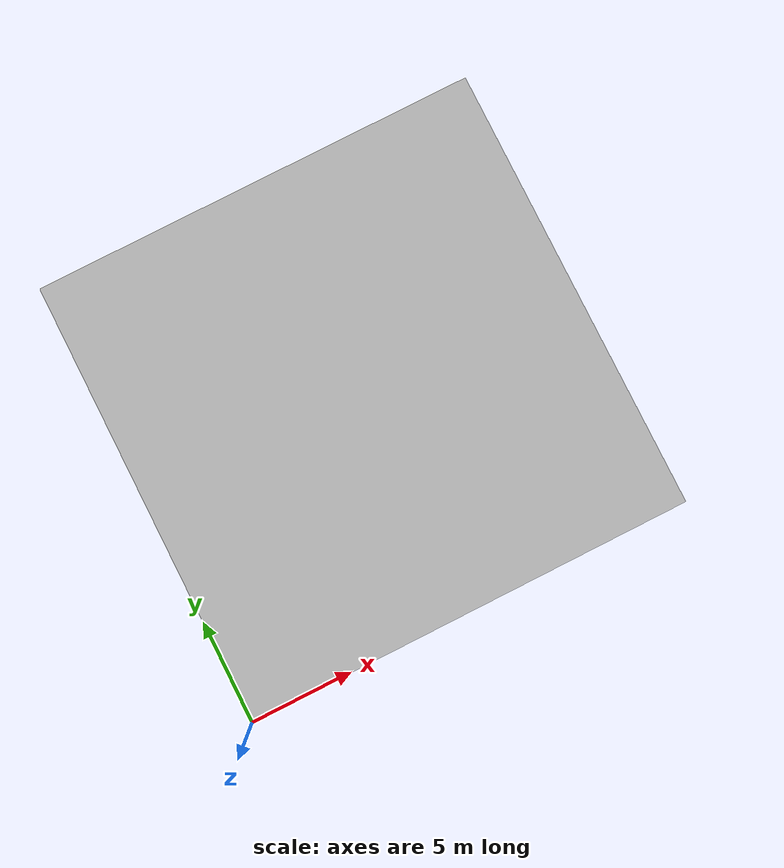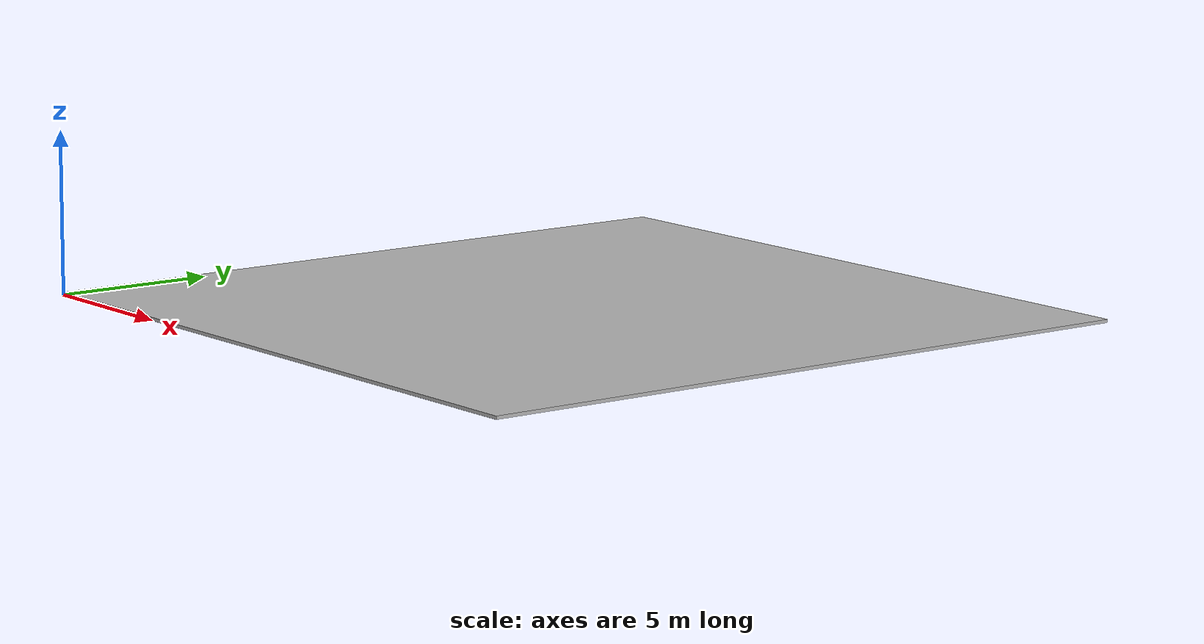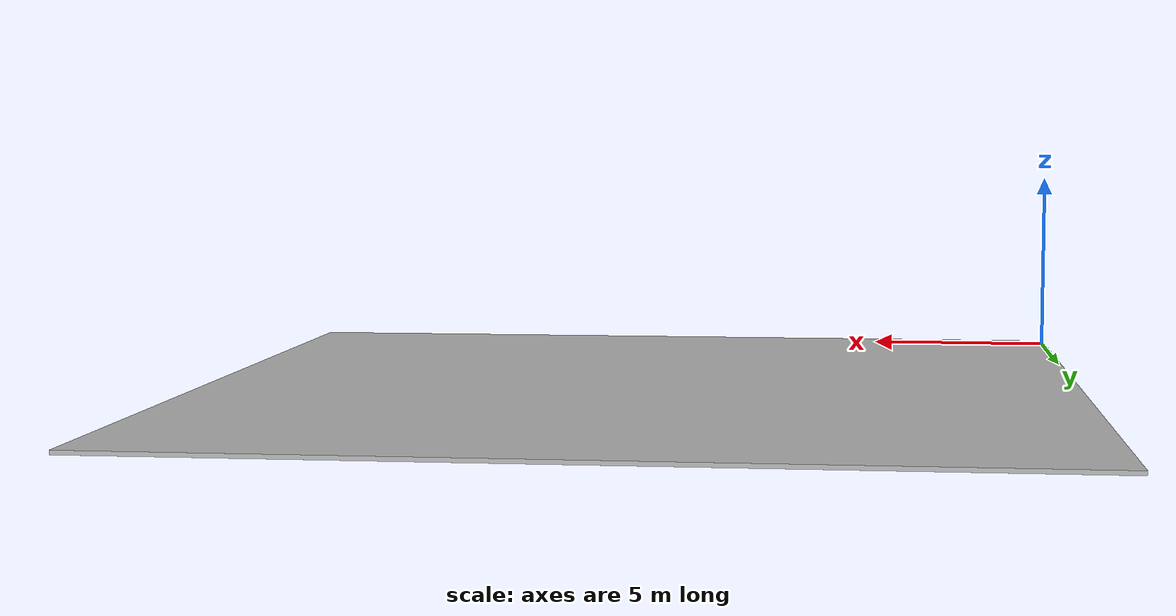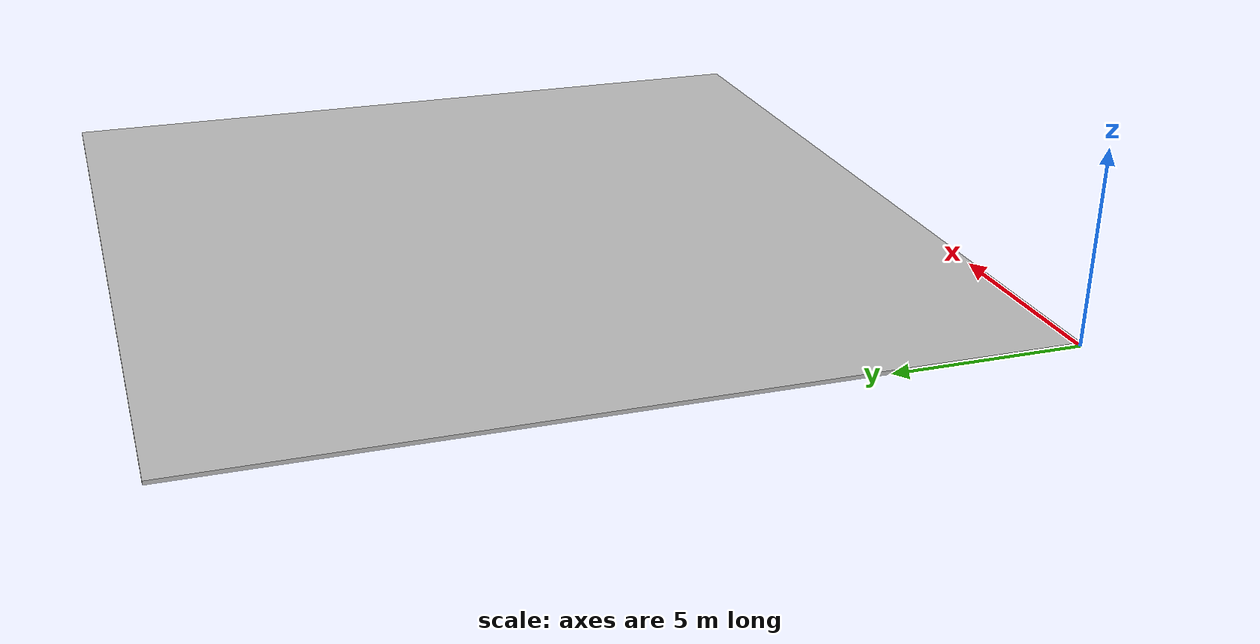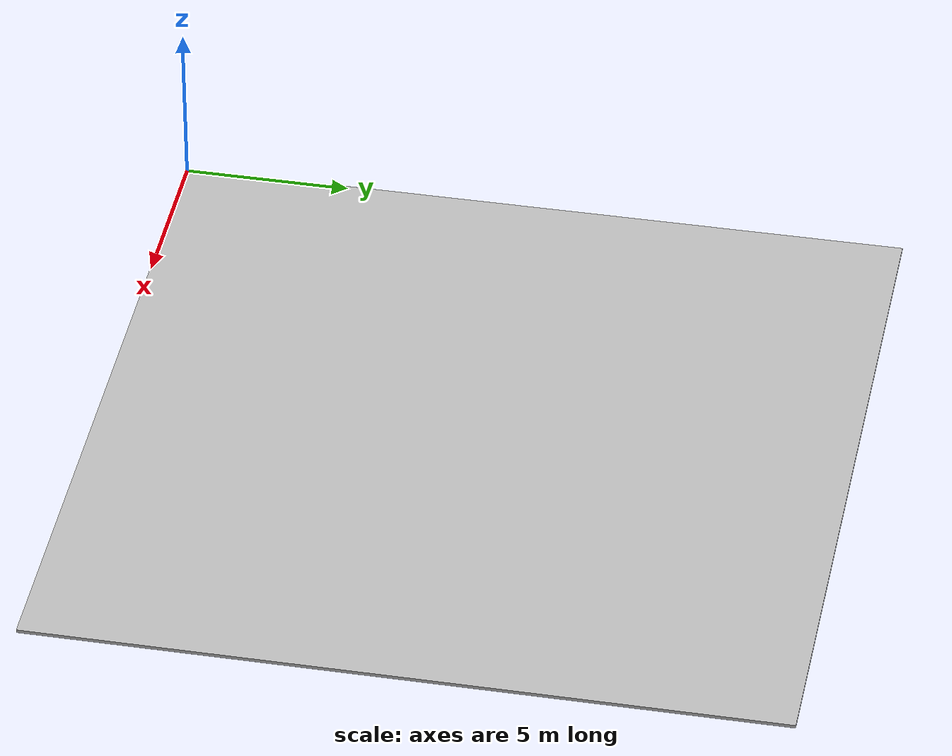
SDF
<?xml version="1.0"?>
<sdf version="1.6">
  <model name="big_flat">
    <static>true</static>
    <link name="body">
      <visual name="visual">
        <geometry>
          <mesh>
            <uri>meshes/big_flat.stl</uri>
          </mesh>
        </geometry>
      </visual>
      <collision name="collision">
        <geometry>
          <mesh>
            <uri>meshes/big_flat.stl</uri>
          </mesh>
        </geometry>
        <surface>
          <friction>
            <ode>
              <mu>1.0</mu>
              <mu2>1.0</mu2>
            </ode>
          </friction>
        </surface>
      </collision>
    </link>
  </model>
</sdf>
